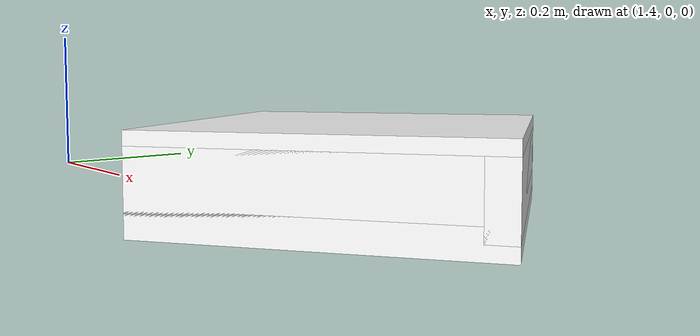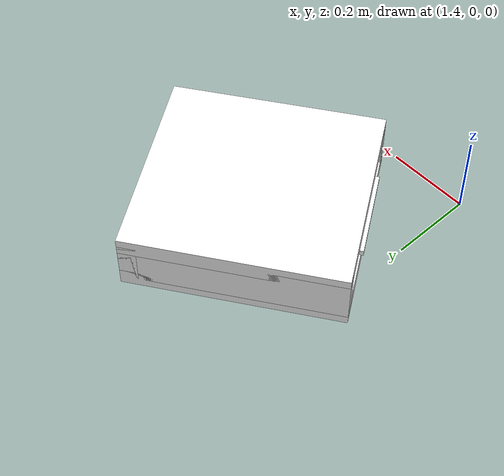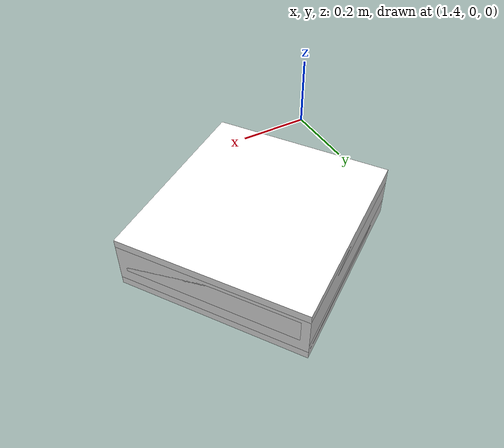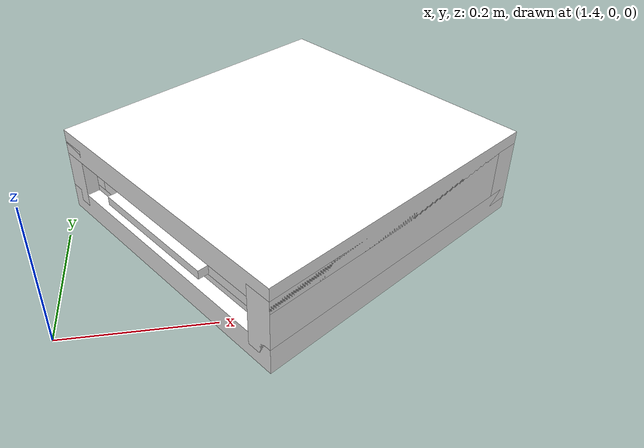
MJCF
<mujoco model="drawer">
        <compiler angle="radian" eulerseq='zxy' />
        <option gravity = "0 0 0" />
        <option>
            <flag contact = "disable"/>
        </option>
        <statistic	extent="1.0" center="0.0 0.0 0.0"/>
        <visual>
            <map fogstart="3" fogend="5" force="0.1" znear=" 0.100000 " zfar=" 12.000000 "/>
        </visual>
        <size njmax="500" nconmax="100" />
        <actuator>
            <velocity joint="drawerJ" name="viva_revolution" kv='10'></velocity>
        </actuator>
        <asset>
            <texture builtin="flat" name="objtex" height="32" width="32" rgb1="1 1 1" type="cube"></texture>
            <texture builtin="flat" name="handletex" height="32" width="32" rgb1="1 1 1" type="cube"></texture>
            <material name="geomObj" shininess="0.03" specular="0.75" texture="objtex"></material>
            <material name="geomHandle" shininess="0.03" specular="0.75" texture="handletex"></material>
        </asset>
        <worldbody>
            <body name="cabinet_bottom" pos= " 1.736579 0.330623 -0.058343 "  quat= " -0.296461 0.000000 0.000000 0.955045" >
                <inertial pos="0 0 0" mass="1" diaginertia="1 1 1" />
                <geom size= " 0.262245 0.247218 0.021708 "  type="box" material="geomObj" name="b"/>
                <body name="cabinet_left" pos= " 0.000000 -0.225510 0.052846 " >
                    <inertial pos="0 0 0" mass="1" diaginertia="1 1 1" />
                    <geom size= " 0.262245 0.021708 0.052846 "  type="box" material="geomObj" name="c" />
                </body>
                <body name="cabinet_right" pos= " 0.000000 0.225510 0.052846 " >
                    <inertial pos="0 0 0" mass="1" diaginertia="1 1 1" />
                    <geom size= " 0.262245 0.021708 0.052846 "  type="box" material="geomObj" name="d" />
                </body>
                <body name="cabinet_top" pos= " 0.000000 0.000000 0.105693 " >
                    <inertial pos="0 0 0" mass="1" diaginertia="1 1 1" />
                    <geom size= " 0.262245 0.247218 0.021708 "  type="box" material="geomObj" name="e"/>
                </body>
                <body name="cabinet_back" pos= " -0.240538 0.000000 0.052846 "  >
                    <inertial pos="0 0 0" mass="1" diaginertia="1 1 1" />
                    <geom size= " 0.021708 0.247218 0.052846 "  type="box" material="geomObj" name="f" />
                </body>
                <body name="drawer" pos= " 0.000000 0.000000 0.010854 "  >
                    <geom size= " 0.240538 0.225510 0.021708 "  type="box" material="geomObj" name="ddddfadfadsfac" />
                    <joint name="drawerJ" pos="0 0 0" axis="1 0 0" type="slide" limited="true" range= "0  0.393368124961853 "  />
                    <inertial pos="0 0 0" mass="1" diaginertia="1 1 1" />
                    <body name="drawer_left" pos= " 0.000000 -0.203802 0.052846 " >
                        <inertial pos="0 0 0" mass="1" diaginertia="1 1 1" />
                        <geom size= " 0.240538 0.021708 0.031139 "  type="box" material="geomObj" name="ddc" />
                    </body>
                    <body name="drawer_right" pos= " 0.000000 0.203802 0.052846 " >
                        <inertial pos="0 0 0" mass="1" diaginertia="1 1 1" />
                        <geom size= " 0.240538 0.021708 0.031139 "  type="box" material="geomObj" name="dddd" />
                    </body>
                    <body name="drawer_front" pos= " 0.218830 0.000000 0.052846 " >
                        <inertial pos="0 0 0" mass="1" diaginertia="1 1 1" />
                        <geom size= " 0.021708 0.225510 0.031139 "  type="box" material="geomObj" name="eeeee"/>
                    </body>
                    <body name="drawer_back" pos= " -0.240538 0.000000 0.052846 "  >
                        <inertial pos="0 0 0" mass="1" diaginertia="1 1 1" />
                        <geom size= " 0.021708 0.225510 0.031139 "  type="box" material="geomObj" name="fffff" />
                    </body>
                    <body name="knob" pos= " 0.262245 0.000000 0.052846 " >
                        <inertial pos="0 0 0" mass="0.1" diaginertia="0.1 0.1 0.1" />
                        <geom size= " 0.008518 0.113374 0.007425 "  pos="0 0 0" type="box" material="geomHandle" name="handle"/>
                    </body>
                </body>
            </body>
            <body name="external_camera_body_0" pos="0.0 0 0.00">
                <camera euler="-1.57 1.57 0.0" fovy=" 54.280851 " name="external_camera_0" pos="0.0 0 0"></camera>
                <inertial pos= " 0.00 0.0 0.000000 " mass="1" diaginertia="1 1 1" />
                <joint name="cam_j" pos="0.0 0 0" axis = "1 0 0" type="free" />
            </body>
        </worldbody>
    </mujoco>
